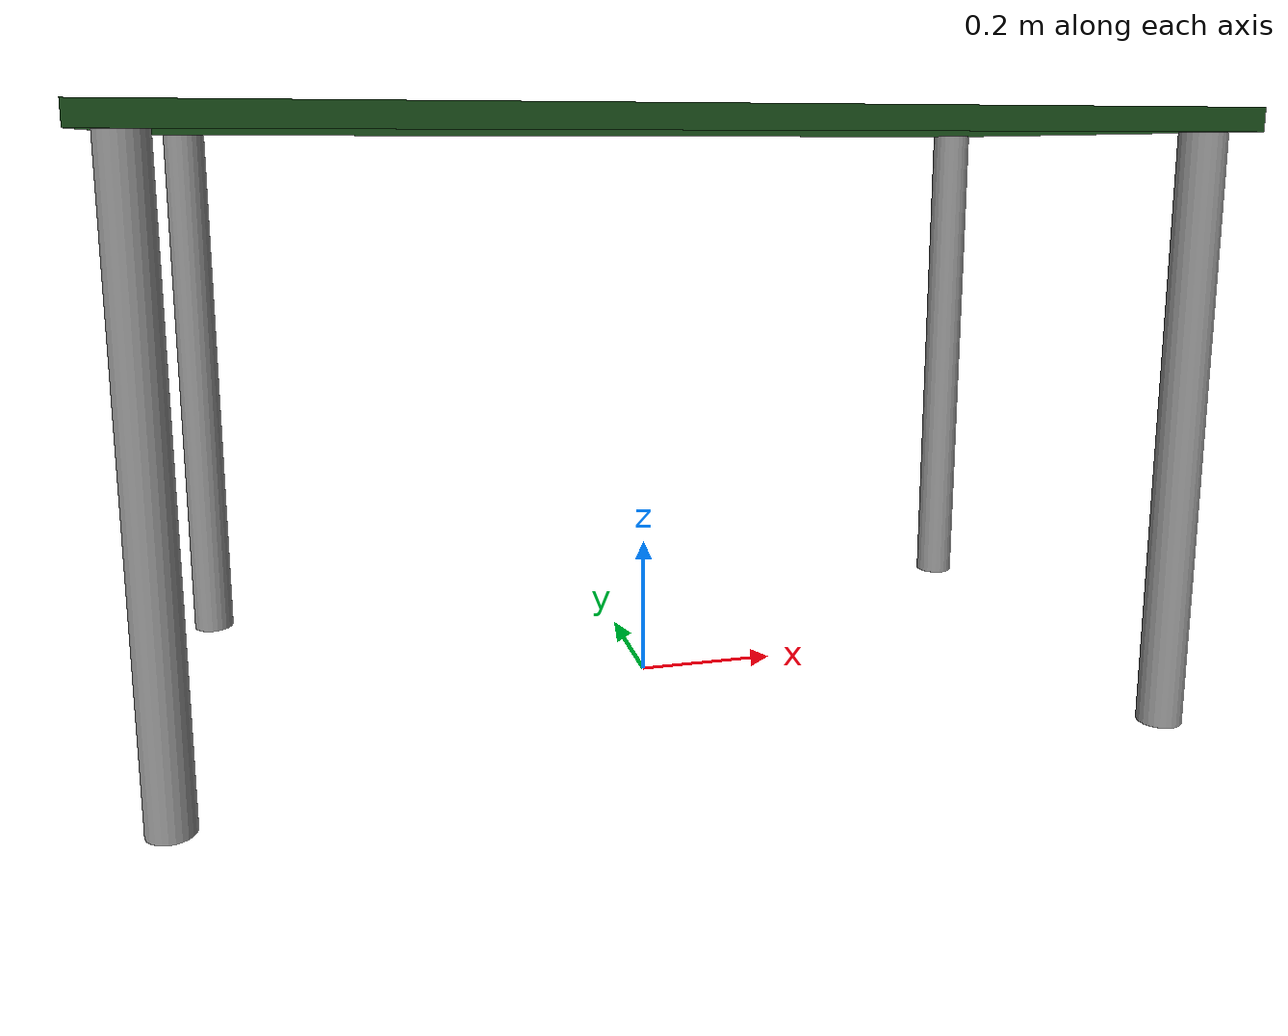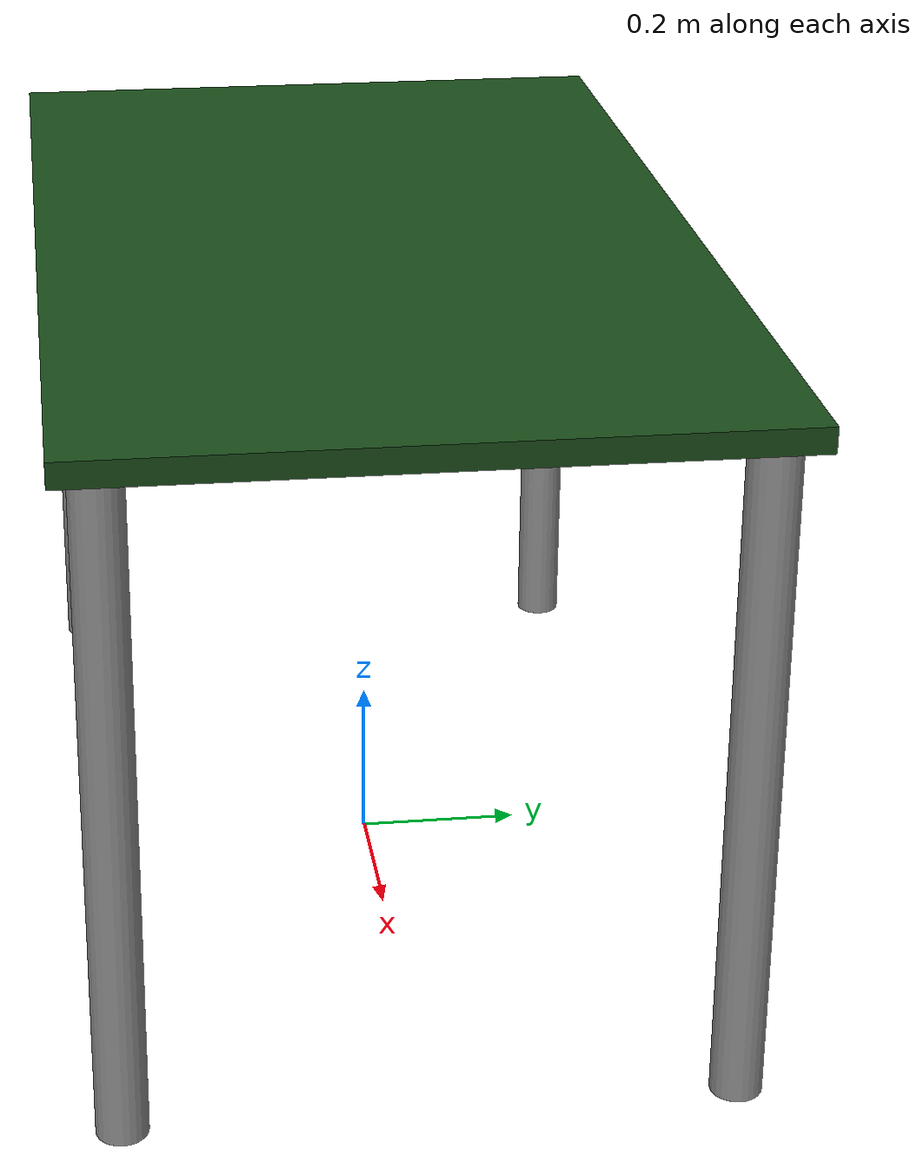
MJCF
<?xml version="1.0" encoding="utf-8"?>
<mujoco model="parts_table">
  <asset>
    <!-- 材质定义 - 木质 -->
    <material name="table_top" rgba="0.1 0.3 0.1 1" specular="0.1" shininess="0.1"/>
    <material name="table_legs" rgba="0.6 0.6 0.6 1" specular="0.1" shininess="0.1"/>
  </asset>

  <worldbody>
    <body name="parts_table">
      <!-- 桌面 (长1.4m, 宽0.8m, 厚0.03m) -->
      <!-- size参数是半尺寸：X=0.7, Y=0.4, Z=0.015 -->
      <!-- 桌面中心在z=0.815，这样底部在z=0.8（与腿顶部贴合） -->
      <geom name="table_top" type="box"
            size="0.7 0.4 0.015"
            pos="0 0 0.815"
            material="table_top"
            mass="10"/>

      <!-- 四条腿（圆柱形，从地面到桌面） -->
      <!-- 腿的位置：距离中心 X方向±0.65m, Y方向±0.35m -->

      <!-- 前左腿 (X+, Y+) -->
      <geom name="leg_fl" type="cylinder"
            size="0.03 0.4"
            pos="0.65 0.35 0.4"
            material="table_legs"
            mass="2"/>

      <!-- 前右腿 (X+, Y-) -->
      <geom name="leg_fr" type="cylinder"
            size="0.03 0.4"
            pos="0.65 -0.35 0.4"
            material="table_legs"
            mass="2"/>

      <!-- 后左腿 (X-, Y+) -->
      <geom name="leg_bl" type="cylinder"
            size="0.03 0.4"
            pos="-0.65 0.35 0.4"
            material="table_legs"
            mass="2"/>

      <!-- 后右腿 (X-, Y-) -->
      <geom name="leg_br" type="cylinder"
            size="0.03 0.4"
            pos="-0.65 -0.35 0.4"
            material="table_legs"
            mass="2"/>
    </body>
  </worldbody>
</mujoco>
